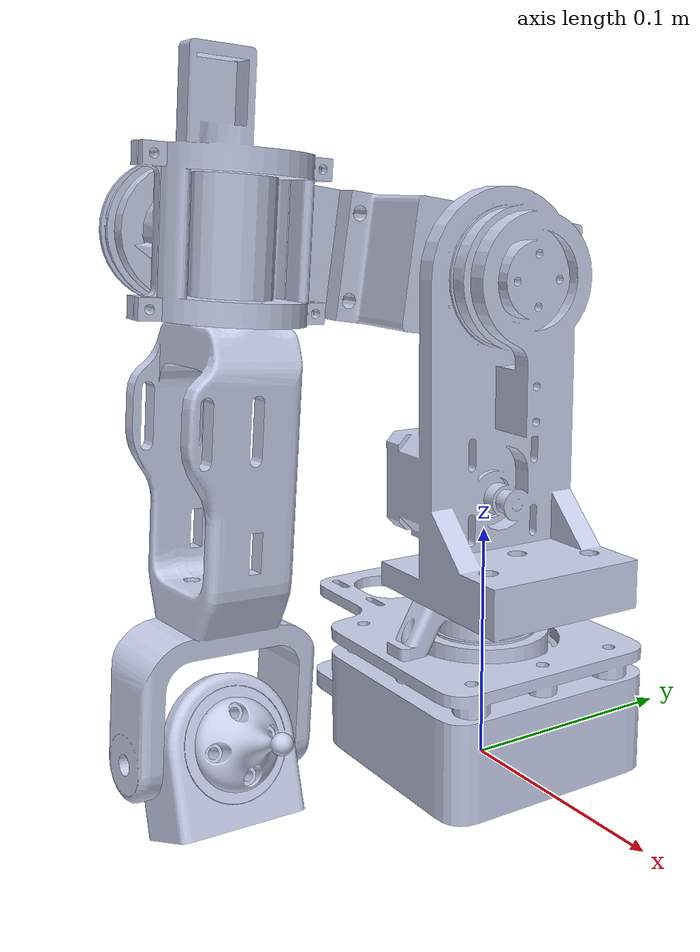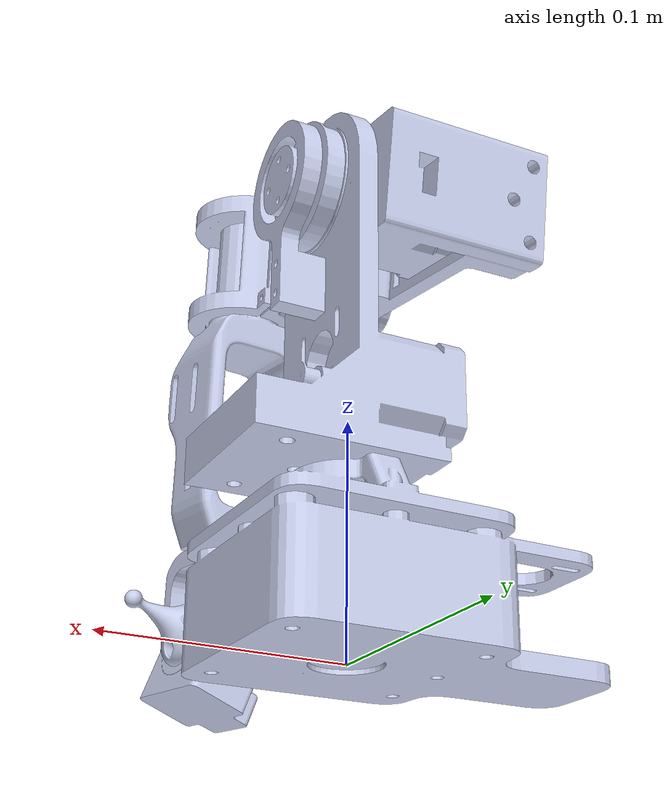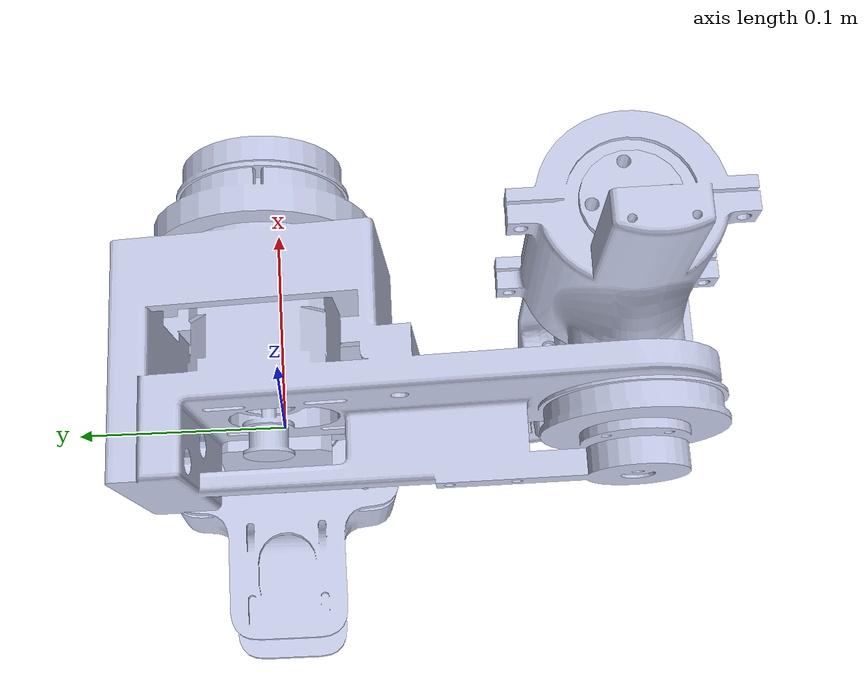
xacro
<?xml version="1.0"?>
<robot xmlns:xacro="http://www.ros.org/wiki/xacro">
  <xacro:property name="joint_damping" value="1.0"/>

  <link
    name="base_link">

    <visual>
      <origin
        xyz="0 0 0"
        rpy="0 0 0" />
      <geometry>
        <mesh
          filename="package://nick_bot_1/meshes/base_link.STL" />
      </geometry>
      <material
        name="">
        <color
          rgba="0.79216 0.81961 0.93333 1" />
      </material>
    </visual>
    <collision>
      <origin
        xyz="0 0 0"
        rpy="0 0 0" />
      <geometry>
        <mesh
          filename="package://nick_bot_1/meshes/base_link.STL" />
      </geometry>
    </collision>
  </link>
  <link
    name="link_1">
    <inertial>
      <origin
        xyz="0.0061634 0.0010038 0.060589"
        rpy="0 0 0" />
      <mass
        value="0.28024" />
      <inertia
        ixx="0.00026699"
        ixy="1.8167E-07"
        ixz="2.7958E-05"
        iyy="0.00023186"
        iyz="-1.865E-06"
        izz="0.00013903" />
    </inertial>
    <visual>
      <origin
        xyz="0 0 0"
        rpy="0 0 0" />
      <geometry>
        <mesh
          filename="package://nick_bot_1/meshes/link_1.STL" />
      </geometry>
      <material
        name="">
        <color
          rgba="0.79216 0.81961 0.93333 1" />
      </material>
    </visual>
    <collision>
      <origin
        xyz="0 0 0"
        rpy="0 0 0" />
      <geometry>
        <mesh
          filename="package://nick_bot_1/meshes/link_1.STL" />
      </geometry>
    </collision>
  </link>
  <joint
    name="joint_1"
    type="revolute">
    <origin
      xyz="0 0 0.064087"
      rpy="0.017453 0 -0.0098054" />
    <parent
      link="base_link" />
    <child
      link="link_1" />
    <axis
      xyz="0 0.017452 0.99985" />
    <limit
      lower="-2.7"
      upper="2.7"
      effort="300"
      velocity="4" />
    <dynamics damping="${joint_damping}"/>
  </joint>
  <link
    name="link_2">
    <inertial>
      <origin
        xyz="-0.03205 0.0005952 0.018073"
        rpy="0 0 0" />
      <mass
        value="0.29393" />
      <inertia
        ixx="0.00033457"
        ixy="-6.6415E-07"
        ixz="-3.3309E-05"
        iyy="0.00032504"
        iyz="-3.5156E-06"
        izz="0.00010703" />
    </inertial>
    <visual>
      <origin
        xyz="0 0 0"
        rpy="0 0 0" />
      <geometry>
        <mesh
          filename="package://nick_bot_1/meshes/link_2.STL" />
      </geometry>
      <material
        name="">
        <color
          rgba="0.79216 0.81961 0.93333 1" />
      </material>
    </visual>
    <collision>
      <origin
        xyz="0 0 0"
        rpy="0 0 0" />
      <geometry>
        <mesh
          filename="package://nick_bot_1/meshes/link_2.STL" />
      </geometry>
    </collision>
  </link>
  <joint
    name="joint_2"
    type="revolute">
    <origin
      xyz="0 0.0024593 0.14089"
      rpy="1.4125 -0.0087445 -0.0071993" />
    <parent
      link="link_1" />
    <child
      link="link_2" />
    <axis
      xyz="0.99996 -0.0087252 0.0001523" />
    <limit
      lower="-3.5"
      upper="0.6"
      effort="300"
      velocity="4" />
    <dynamics damping="${joint_damping}"/>
  </joint>
  <link
    name="link_3">
    <inertial>
      <origin
        xyz="-0.014774 0.00011596 -0.0036584"
        rpy="0 0 0" />
      <mass
        value="0.085607" />
      <inertia
        ixx="5.4273E-05"
        ixy="-3.1645E-08"
        ixz="7.4467E-07"
        iyy="4.5008E-05"
        iyz="-2.8453E-07"
        izz="3.1724E-05" />
    </inertial>
    <visual>
      <origin
        xyz="0 0 0"
        rpy="0 0 0" />
      <geometry>
        <mesh
          filename="package://nick_bot_1/meshes/link_3.STL" />
      </geometry>
      <material
        name="">
        <color
          rgba="0.79216 0.81961 0.93333 1" />
      </material>
    </visual>
    <collision>
      <origin
        xyz="0 0 0"
        rpy="0 0 0" />
      <geometry>
        <mesh
          filename="package://nick_bot_1/meshes/link_3.STL" />
      </geometry>
    </collision>
  </link>
  <joint
    name="joint_3"
    type="revolute">
    <origin
      xyz="0 0.0019372 0.11098"
      rpy="1.6508 -0.0088619 -0.009271" />
    <parent
      link="link_2" />
    <child
      link="link_3" />
    <axis
      xyz="-0.99996 0.0087252 -0.0001523" />
    <limit
      lower="-0.7"
      upper="4"
      effort="200"
      velocity="4" />
    <dynamics damping="${joint_damping}"/>
  </joint>
  <link
    name="link_4">
    <inertial>
      <origin
        xyz="0.00044646 0.0013719 0.078813"
        rpy="0 0 0" />
      <mass
        value="0.15698" />
      <inertia
        ixx="0.0003485"
        ixy="3.586E-08"
        ixz="-7.8887E-07"
        iyy="0.00035409"
        iyz="-5.1436E-06"
        izz="5.9114E-05" />
    </inertial>
    <visual>
      <origin
        xyz="0 0 0"
        rpy="0 0 0" />
      <geometry>
        <mesh
          filename="package://nick_bot_1/meshes/link_4.STL" />
      </geometry>
      <material
        name="">
        <color
          rgba="0.79216 0.81961 0.93333 1" />
      </material>
    </visual>
    <collision>
      <origin
        xyz="0 0 0"
        rpy="0 0 0" />
      <geometry>
        <mesh
          filename="package://nick_bot_1/meshes/link_4.STL" />
      </geometry>
    </collision>
  </link>
  <joint
    name="joint_4"
    type="revolute">
    <origin
      xyz="0 0 0"
      rpy="0.015346 0.017326 1.4497" />
    <parent
      link="link_3" />
    <child
      link="link_4" />
    <axis
      xyz="0 -0.017452 -0.99985" />
    <limit
      lower="-3.1415"
      upper="3.1415"
      effort="300"
      velocity="4" />
    <dynamics damping="${joint_damping}"/>
  </joint>
  <link
    name="link_5">
    <inertial>
      <origin
        xyz="1.3718E-06 -0.011218 0.0025865"
        rpy="0 0 0" />
      <mass
        value="0.049088" />
      <inertia
        ixx="1.0527E-05"
        ixy="1.4724E-09"
        ixz="-5.9687E-11"
        iyy="1.3447E-05"
        iyz="-1.1209E-06"
        izz="1.7793E-05" />
    </inertial>
    <visual>
      <origin
        xyz="0 0 0"
        rpy="0 0 0" />
      <geometry>
        <mesh
          filename="package://nick_bot_1/meshes/link_5.STL" />
      </geometry>
      <material
        name="">
        <color
          rgba="0.79216 0.81961 0.93333 1" />
      </material>
    </visual>
    <collision>
      <origin
        xyz="0 0 0"
        rpy="0 0 0" />
      <geometry>
        <mesh
          filename="package://nick_bot_1/meshes/link_5.STL" />
      </geometry>
    </collision>
  </link>
  <joint
    name="joint_5"
    type="revolute">
    <origin
      xyz="0 0.0032854 0.18822"
      rpy="-1.909 0.0001523 3.1329" />
    <parent
      link="link_4" />
    <child
      link="link_5" />
    <axis
      xyz="1 0 0" />
    <limit
      lower="0"
      upper="4"
      effort="200"
      velocity="4" />
    <dynamics damping="${joint_damping}"/>
  </joint>
  <link
    name="end_effector">
    <inertial>
      <origin
        xyz="1.2663E-08 0.020431 2.0602E-08"
        rpy="0 0 0" />
      <mass
        value="0.01147" />
      <inertia
        ixx="9.3427E-07"
        ixy="-3.723E-12"
        ixz="2.2266E-12"
        iyy="1.2077E-06"
        iyz="-1.4872E-12"
        izz="9.3426E-07" />
    </inertial>
    <visual>
      <origin
        xyz="0 0 0"
        rpy="0 0 0" />
      <geometry>
        <mesh
          filename="package://nick_bot_1/meshes/end_effector.STL" />
      </geometry>
      <material
        name="">
        <color
          rgba="0.79216 0.81961 0.93333 1" />
      </material>
    </visual>
    <collision>
      <origin
        xyz="0 0 0"
        rpy="0 0 0" />
      <geometry>
        <mesh
          filename="package://nick_bot_1/meshes/end_effector.STL" />
      </geometry>
    </collision>
  </link>
  <joint
    name="joint_6"
    type="revolute">
    <origin
      xyz="0 0 0"
      rpy="1.5708 0 1.6504" />
    <parent
      link="link_5" />
    <child
      link="end_effector" />
    <axis
      xyz="0 -1 0" />
    <limit
      lower="-3.1415"
      upper="3.1415"
      effort="200"
      velocity="4" />
    <dynamics damping="${joint_damping}"/>
  </joint>

  <transmission name="link_1_trans">
    <type>transmission_interface/SimpleTransmission</type>
   <joint name="joint_1">
     <hardwareInterface>hardware_interface/PositionJointInterface</hardwareInterface>
   </joint>
   <actuator name="link_1_motor">

   <hardwareInterface>hardware_interface/PositionJointInterface</hardwareInterface>
       <mechanicalReduction>1</mechanicalReduction>
   </actuator>
   	</transmission>

     <transmission name="link_2_trans">
    <type>transmission_interface/SimpleTransmission</type>
   <joint name="joint_2">
     <hardwareInterface>hardware_interface/PositionJointInterface</hardwareInterface>
   </joint>
   <actuator name="link_2_motor">

   <hardwareInterface>hardware_interface/PositionJointInterface</hardwareInterface>
       <mechanicalReduction>1</mechanicalReduction>
   </actuator>
   	</transmission>

     <transmission name="link_3_trans">
    <type>transmission_interface/SimpleTransmission</type>
   <joint name="joint_3">
     <hardwareInterface>hardware_interface/PositionJointInterface</hardwareInterface>
   </joint>
   <actuator name="link_3_motor">

   <hardwareInterface>hardware_interface/PositionJointInterface</hardwareInterface>
       <mechanicalReduction>1</mechanicalReduction>
   </actuator>
	</transmission>

	<transmission name="link_4_trans">
    <type>transmission_interface/SimpleTransmission</type>
   <joint name="joint_4">
     <hardwareInterface>hardware_interface/PositionJointInterface</hardwareInterface>
   </joint>
   <actuator name="link_4_motor">

   <hardwareInterface>hardware_interface/PositionJointInterface</hardwareInterface>
       <mechanicalReduction>1</mechanicalReduction>
   </actuator>
	</transmission>

	<transmission name="link_5_trans">
    <type>transmission_interface/SimpleTransmission</type>
   <joint name="joint_5">
     <hardwareInterface>hardware_interface/PositionJointInterface</hardwareInterface>
   </joint>
   <actuator name="link_5_motor">

   <hardwareInterface>hardware_interface/PositionJointInterface</hardwareInterface>
       <mechanicalReduction>1</mechanicalReduction>
   </actuator>
	</transmission>

	<transmission name="end_effector_trans">
    <type>transmission_interface/SimpleTransmission</type>
   <joint name="joint_6">
     <hardwareInterface>hardware_interface/PositionJointInterface</hardwareInterface>
   </joint>
   <actuator name="end_effector_motor">

   <hardwareInterface>hardware_interface/PositionJointInterface</hardwareInterface>
       <mechanicalReduction>1</mechanicalReduction>
   </actuator>
	</transmission>

</robot>
